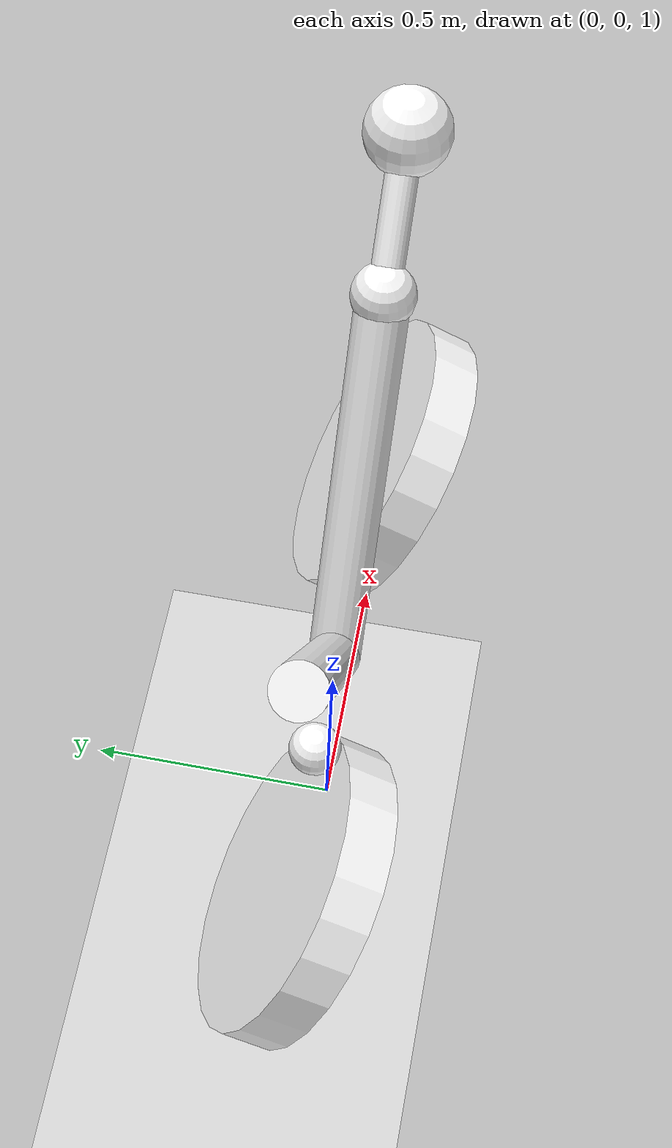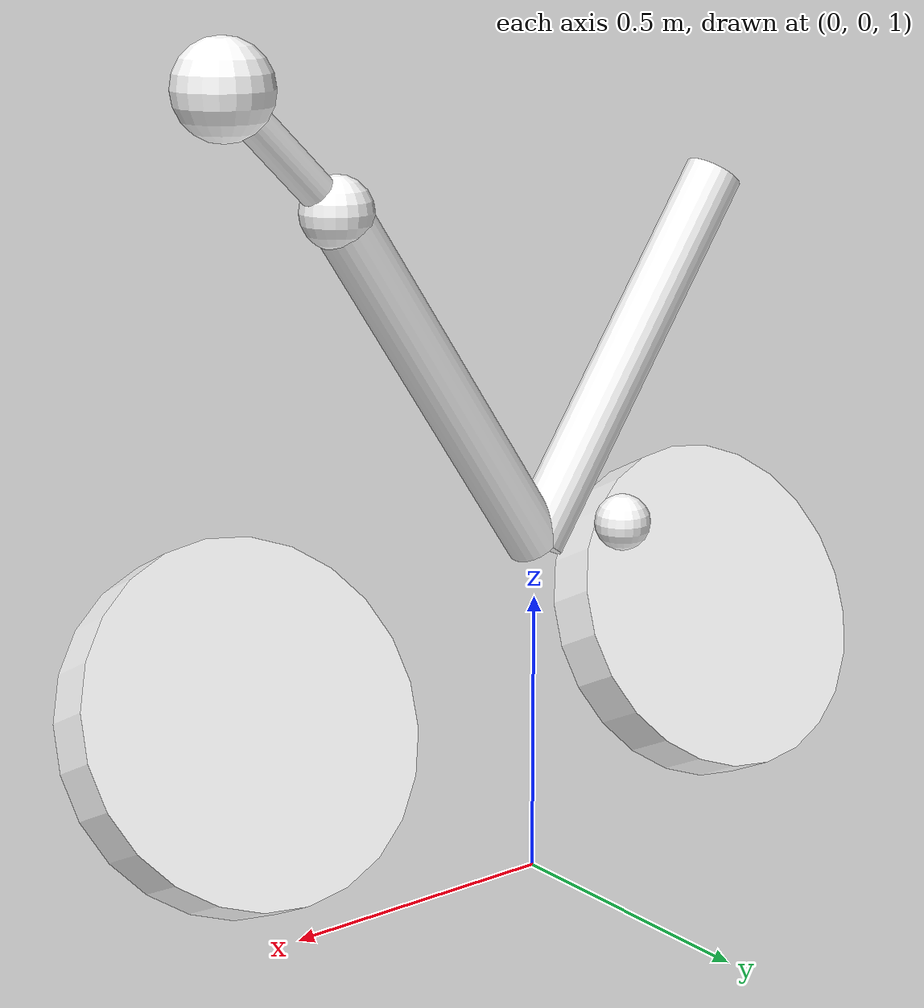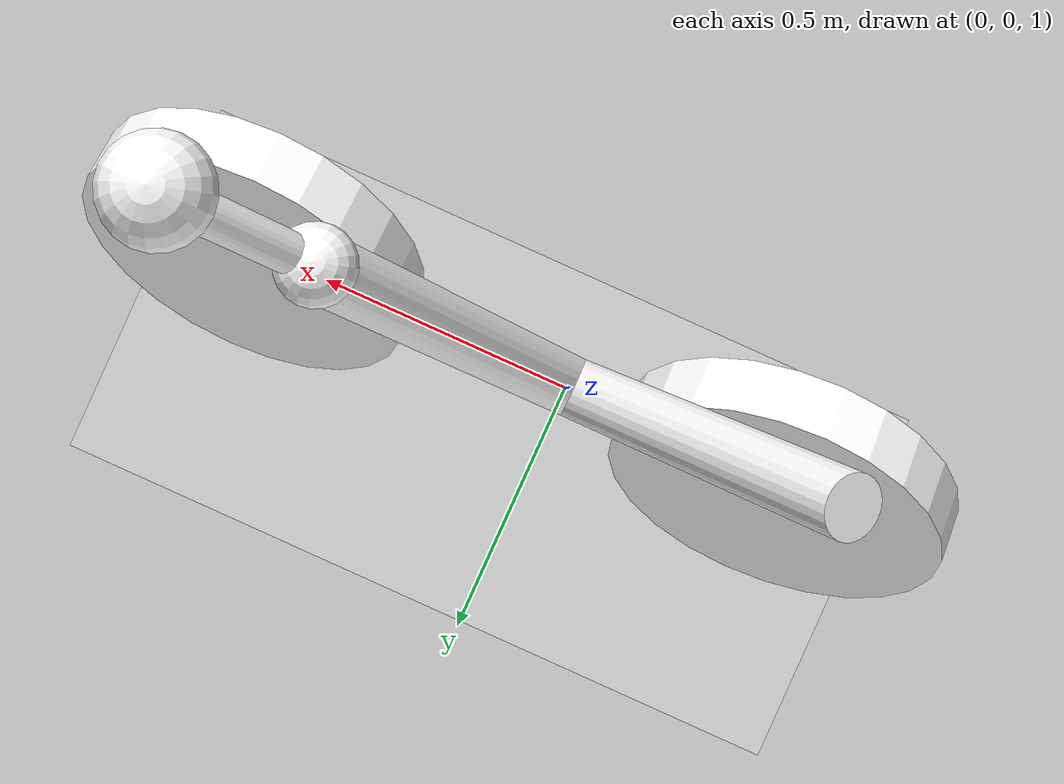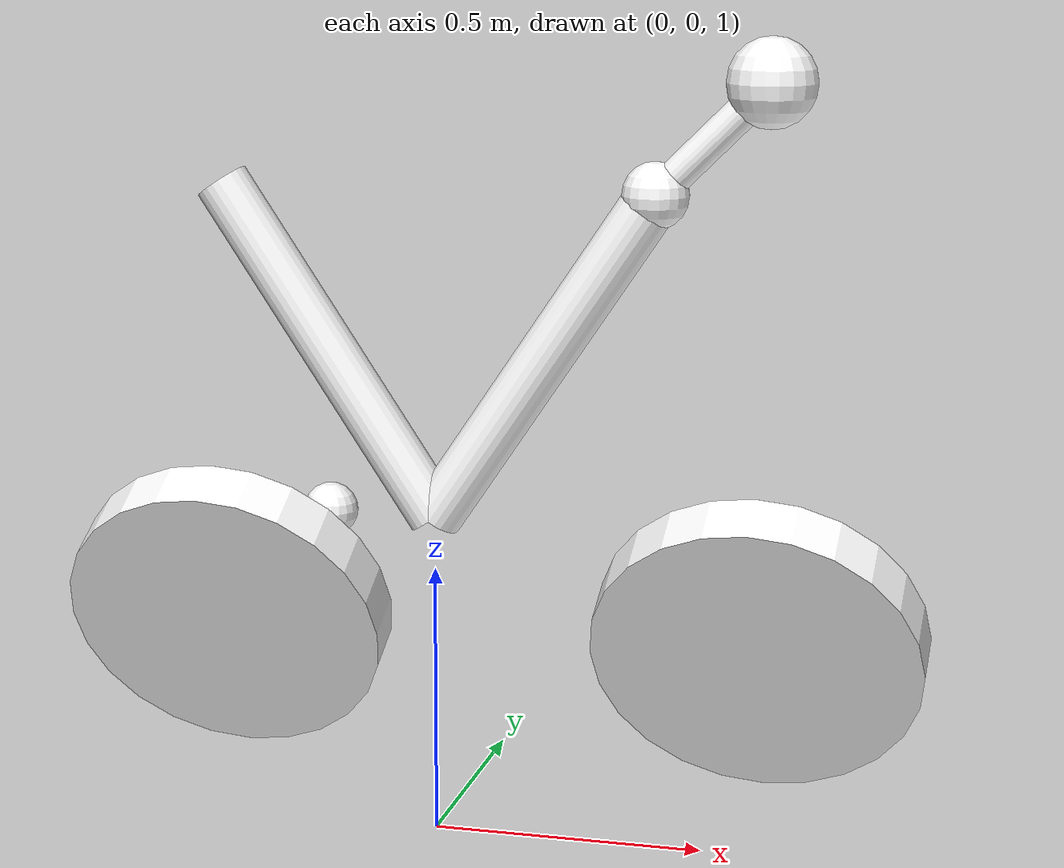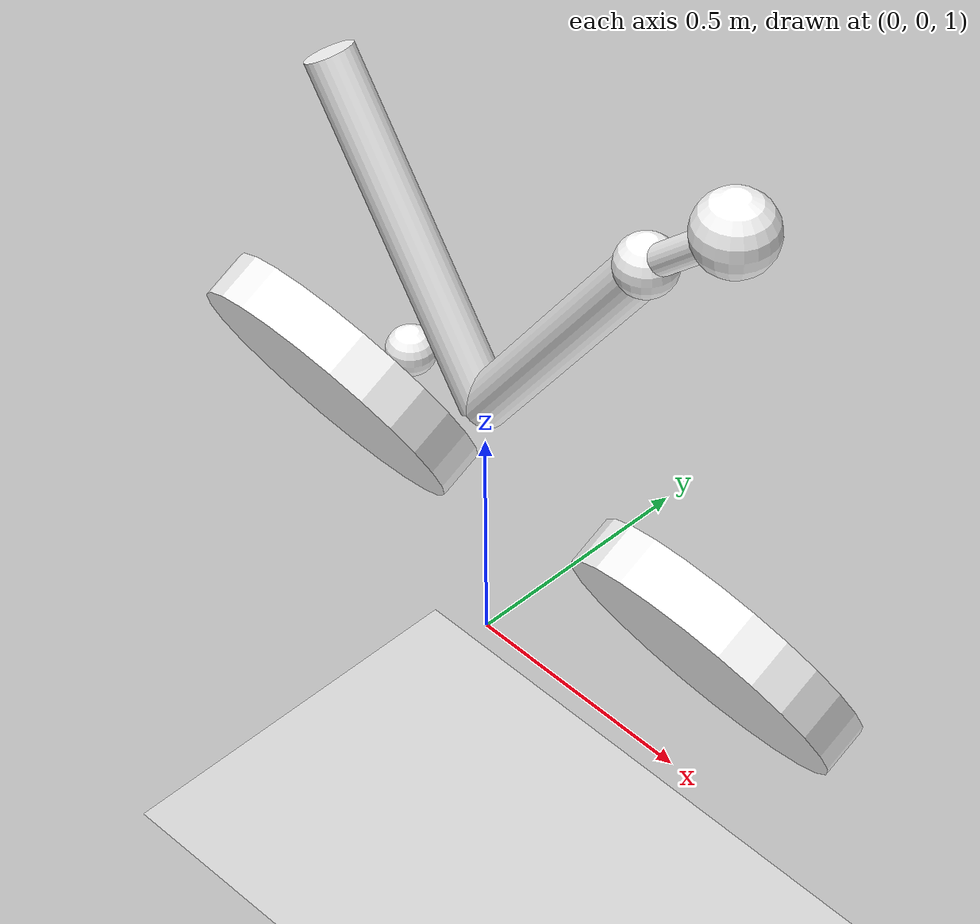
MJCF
<?xml version="1.0" encoding="UTF-8"?>
<mujoco model="bicycle">
    <compiler angle="radian"/>
    <option timestep="0.002" gravity="0 0 -9.81"/>
    <default>
        <geom type="sphere" size="0.05" contype="1" conaffinity="1" condim="3"/>
        <joint type="hinge" limited="true" range="-3.14 3.14" damping="0.1"/>
        <motor gear="1" ctrllimited="true" ctrlrange="-1 1"/>
    </default>
    <asset>
        <texture name="sky_texture" type="skybox" builtin="gradient" width="512" height="512"/>
        <texture name="grid_texture" type="cube" builtin="checker" width="512" height="512"/>
        <material name="grid_mat"/>
        <material name="vehicle_mat"/>
    </asset>
    <worldbody>
        <light dir="-1 -1 -1" pos="0 2 2" directional="true" diffuse="0.8 0.8 0.8" specular="0.8 0.8 0.8"/>
        <light directional="true" diffuse="0.6 0.6 0.6" specular="0.6 0.6 0.6"/>
        <geom name="floor" type="plane" pos="0 0 0" rgba="0.8 0.8 0.8 1" material="grid_mat" size="10 10 0.1"/>
        <body name="frame" pos="0 0 0.8">
            <body name="top_tube" pos="0 0 0">
                <geom name="top_tube_geom" type="cylinder" size="0.05 0.8" fromto="0 0 0.8 0.4 0 1.4" material="vehicle_mat"/>
            </body>
            <body name="down_tube" pos="0 0 0">
                <geom name="down_tube_geom" type="cylinder" size="0.05 0.8" fromto="0 0 0.8 -0.4 0 1.4" material="vehicle_mat"/>
            </body>
            <body name="seat_stay" pos="0 0 0">
                <geom name="seat_stay_geom" type="cylinder" size="0.03 0.6" fromto="0.4 0 1.4 0.6 0 1.6" material="vehicle_mat"/>
            </body>
            <body name="seat" pos="0.6 0 1.6">
                <geom name="seat_geom" type="sphere" size="0.08" material="vehicle_mat"/>
            </body>
            <body name="handlebar" pos="0.4 0 1.4">
                <geom name="handlebar_geom" type="sphere" size="0.06" material="vehicle_mat"/>
                <joint name="steer" type="hinge" axis="0 0 1" pos="0 0 0"/>
            </body>
            <body name="pedals" pos="-0.2 0 0.8">
                <geom name="pedal_crankset_geom" type="sphere" size="0.05" material="vehicle_mat"/>
                <joint name="pedal_hinge" type="hinge" axis="1 0 0" pos="0 0 0"/>
            </body>
        </body>
        <body name="front_wheel_body" pos="0.6 0 1.4">
            <geom name="front_wheel_geom" type="cylinder" size="0.3 0.05" material="vehicle_mat" euler="90 0 0"/>
            <joint name="front_wheel_joint" type="hinge" axis="1 0 0" pos="0 0 0"/>
        </body>
        <body name="rear_wheel_body" pos="-0.4 0 1.4">
            <geom name="rear_wheel_geom" type="cylinder" size="0.3 0.05" material="vehicle_mat" euler="90 0 0"/>
            <joint name="rear_wheel_joint" type="hinge" axis="1 0 0" pos="0 0 0"/>
        </body>
        <camera name="track" mode="track" pos="0 2.5 1"/>
    </worldbody>
    <actuator>
        <motor name="pedal_motor" joint="pedal_hinge" gear="100"/>
        <motor name="steer_motor" joint="steer" gear="50"/>
        <motor name="front_brake" joint="front_wheel_joint" gear="-200"/>
        <motor name="rear_brake" joint="rear_wheel_joint" gear="-200"/>
    </actuator>
</mujoco>
